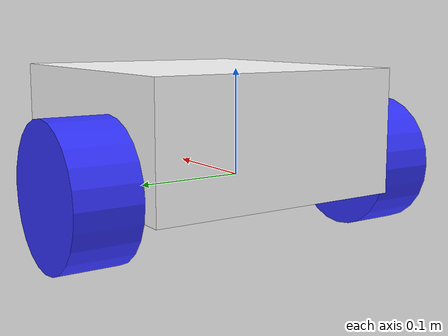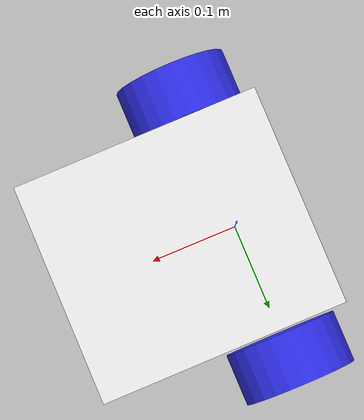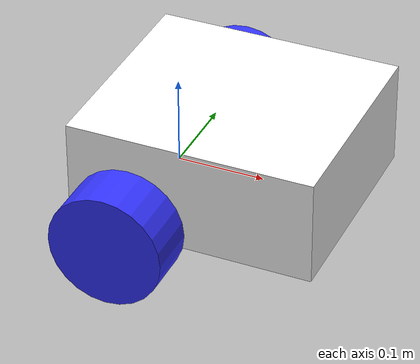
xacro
<?xml version="1.0"?>
<robot xmlns:xacro="http://www.ros.org/wiki/xacro" >

 <xacro:include filename="inertial_macros.xacro"/>

    <xacro:property name="chassis_length"           value="0.280"/>
    <xacro:property name="chassis_width"            value="0.250"/>
    <xacro:property name="chassis_height"           value="0.120"/>
    <xacro:property name="chassis_mass"             value="0.700"/>

    <xacro:property name="wheel_radius"             value="0.065"/>
    <xacro:property name="wheel_thickness"          value="0.060"/>
    <xacro:property name="wheel_mass"               value="0.050"/>
    <xacro:property name="wheel_offset_x"           value="0.073"/>
    <xacro:property name="wheel_offset_y"           value="0.160"/>
    <xacro:property name="wheel_offset_z"           value="0.020"/>

    <xacro:property name="caster_wheel_radius"      value="${wheel_radius - wheel_offset_z}"/>
    <xacro:property name="caster_wheel_mass"        value="0.010"/>
    <xacro:property name="caster_wheel_offset_x"    value="0.200"/>
    <xacro:property name="caster_wheel_offset_z"    value="${wheel_offset_z - wheel_radius + caster_wheel_radius}"/>

    <!-- Colors -->

    <material name="white">
        <color rgba="1 1 1 1" />
    </material>

    <material name="orange">
        <color rgba="1 0.3 0.1 1"/>
    </material>

    <material name="blue">
        <color rgba="0.2 0.2 1 1"/>
    </material>

    <material name="black">
        <color rgba="0 0 0 1"/>
    </material>

    <material name="red">
        <color rgba="1 0 0 1"/>
    </material>

 <!-- BASE LINK -->

    <link name="base_link">

    </link>

    <!-- BASE_FOOTPRINT LINK -->

    <joint name="base_footprint_joint" type="fixed">
        <parent link="base_link"/>
        <child link="base_footprint"/>
        <origin xyz="0 0 0" rpy="0 0 0"/>
    </joint>

    <link name="base_footprint">
    </link>

    <!-- CHASSIS LINK -->

    <joint name="chassis_joint" type="fixed">
        <parent link="base_link"/>
        <child link="chassis"/>
        <origin xyz="${-wheel_offset_x} 0 ${-wheel_offset_z}"/>
    </joint>

    <link name="chassis">
        <visual>
            <origin xyz="${chassis_length/2} 0 ${chassis_height/2}"/>
            <geometry>
                <box size="${chassis_length} ${chassis_width} ${chassis_height}"/>
            </geometry>
            <material name="white"/>
        </visual>
        <collision>
            <origin xyz="${chassis_length/2} 0 ${chassis_height/2}"/>
            <geometry>
                <box size="${chassis_length} ${chassis_width} ${chassis_height}"/>
            </geometry>
        </collision>
        <xacro:inertial_box mass="0.5" x="${chassis_length}" y="${chassis_width}" z="${chassis_height}">
            <origin xyz="${chassis_length/2} 0 ${chassis_height/2}" rpy="0 0 0"/>
        </xacro:inertial_box>
    </link>

    <gazebo reference="chassis">
        <material>Gazebo/white</material>
    </gazebo>

    <!-- LEFT WHEEL LINK -->

    <joint name="left_wheel_joint" type="continuous">
        <parent link="base_link"/>
        <child link="left_wheel"/>
        <origin xyz="0 ${wheel_offset_y} 0" rpy="-${pi/2} 0 0" />
        <axis xyz="0 0 1"/>
    </joint>

    <link name="left_wheel">
        <visual>
            <geometry>
                <cylinder radius="${wheel_radius}" length="${wheel_thickness}"/>
            </geometry>
            <material name="blue"/>
        </visual>
        <collision>
            <geometry>
                <sphere radius="${wheel_radius}"/>
            </geometry>
        </collision>
        <xacro:inertial_cylinder mass="${wheel_mass}" length="${wheel_thickness}" radius="${wheel_radius}">
            <origin xyz="0 0 0" rpy="0 0 0"/>
        </xacro:inertial_cylinder>
    </link>

    <gazebo reference="left_wheel">
        <material>Gazebo/Blue</material>
    </gazebo>

    <!-- RIGHT WHEEL LINK -->

    <joint name="right_wheel_joint" type="continuous">
        <parent link="base_link"/>
        <child link="right_wheel"/>
        <origin xyz="0 ${-wheel_offset_y} 0" rpy="${pi/2} 0 0" />
        <axis xyz="0 0 -1"/>
    </joint>

    <link name="right_wheel">
        <visual>
            <geometry>
                <cylinder radius="${wheel_radius}" length="${wheel_thickness}"/>
            </geometry>
            <material name="blue"/>
        </visual>
        <collision>
            <geometry>
                <sphere radius="${wheel_radius}"/>
            </geometry>
        </collision>
        <xacro:inertial_cylinder mass="${wheel_mass}" length="${wheel_thickness}" radius="${wheel_radius}">
            <origin xyz="0 0 0" rpy="0 0 0"/>
        </xacro:inertial_cylinder>
    </link>

    <gazebo reference="right_wheel">
        <material>Gazebo/Blue</material>
    </gazebo>

    <!-- CASTER WHEEL LINK -->

    <joint name="caster_wheel_joint" type="fixed">
        <parent link="chassis"/>
        <child link="caster_wheel"/>
        <origin xyz="${caster_wheel_offset_x} 0 ${caster_wheel_offset_z}"/>
    </joint>

    <link name="caster_wheel">
        <visual>
            <geometry>
                <sphere radius="${caster_wheel_radius}"/>
            </geometry>
            <material name="blue"/>
        </visual>
        <collision>
            <geometry>
                <sphere radius="${caster_wheel_radius}"/>
            </geometry>
        </collision>
        <xacro:inertial_sphere mass="${caster_wheel_mass}" radius="${caster_wheel_radius}">
            <origin xyz="0 0 0" rpy="0 0 0"/>
        </xacro:inertial_sphere>
    </link>

    <gazebo reference="caster_wheel">
        <material>Gazebo/blue</material>
        <mu1 value="0.001"/>
        <mu2 value="0.001"/>
    </gazebo>

</robot>
